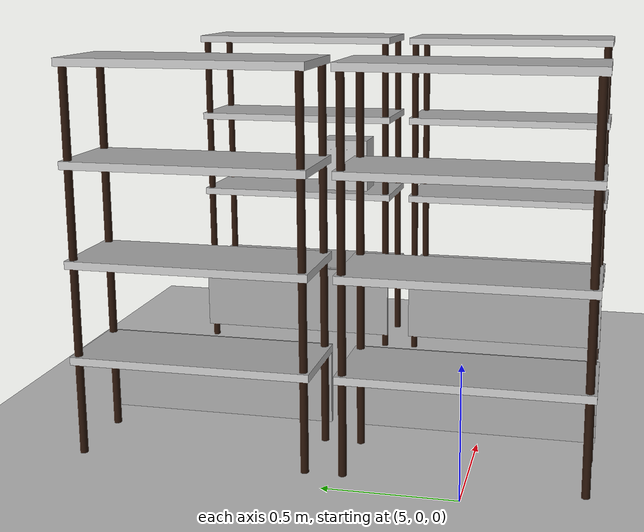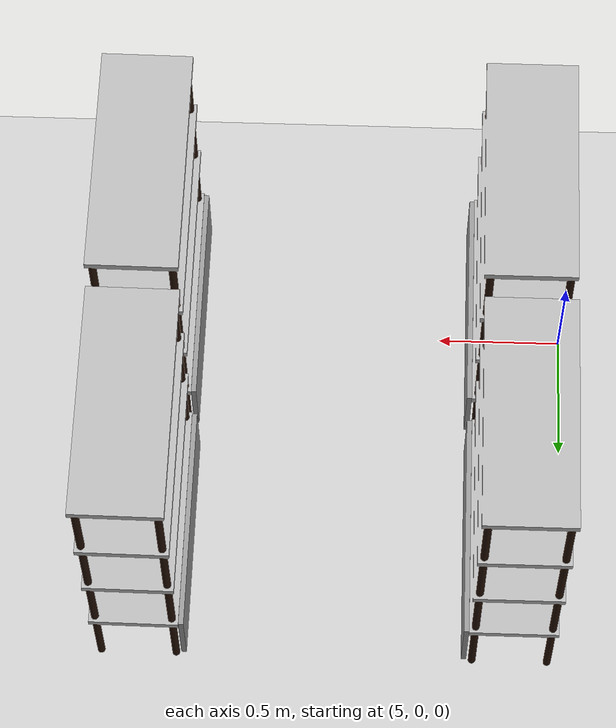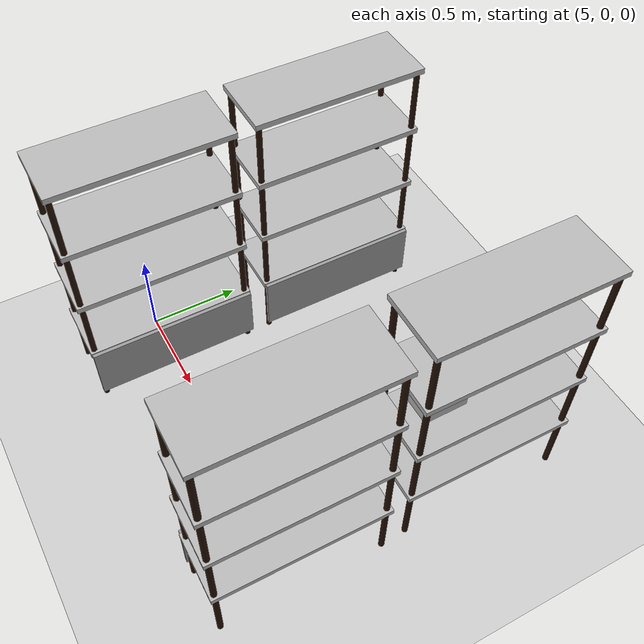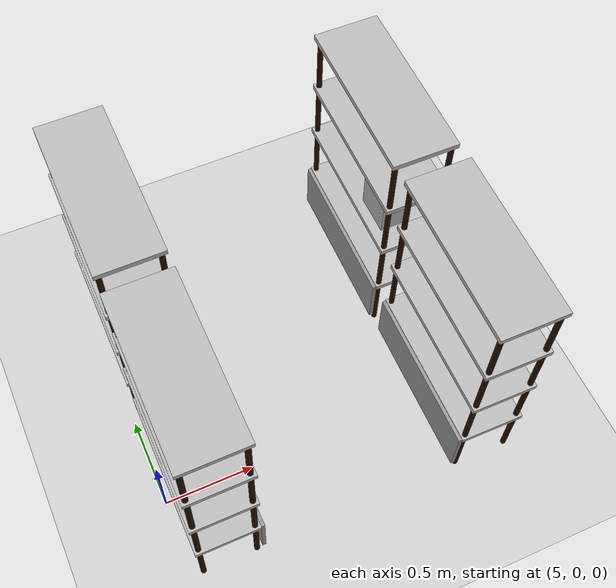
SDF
<sdf version="1.7">
 <world name="default">
  <model name="ground_plane">
   <static>1</static>
   <link name="link">
    <collision name="collision">
     <geometry><plane><normal>0 0 1</normal><size>100 100</size></plane></geometry>
     <surface><friction><ode><mu>100</mu><mu2>50</mu2></ode></friction></surface>
    </collision>
    <visual name="visual">
     <cast_shadows>0</cast_shadows>
     <geometry><plane><normal>0 0 1</normal><size>100 100</size></plane></geometry>
     <material>
      <script><uri>file://media/materials/scripts/gazebo.material</uri><name>Gazebo/Grey</name></script>
     </material>
    </visual>
   </link>
  </model>
  <model name="rack_1">
   <link name="link">
    <inertial>
     <mass>0.1</mass>
     <inertia><ixx>0.01857</ixx><ixy>0</ixy><ixz>0</ixz><iyy>0.015598</iyy><iyz>0</iyz><izz>0.00305</izz></inertia>
    </inertial>
    <visual name="visual1">
     <cast_shadows>0</cast_shadows>
     <geometry><mesh><uri>model://rack/meshes/rack.dae</uri></mesh></geometry>
     <material>
      <shader type="pixel"><normal_map>__default__</normal_map></shader>
      <emissive>0 0 0 1</emissive>
     </material>
    </visual>
    <visual name="visual_2">
     <cast_shadows>0</cast_shadows>
     <geometry><box><size>0.02 0.9 0.31</size></box></geometry>
     <material>
      <lighting>1</lighting>
      <script><uri>file://media/materials/scripts/gazebo.material</uri><name>Gazebo/Grey</name></script>
      <shader type="pixel"><normal_map>__default__</normal_map></shader>
      <ambient>0.3 0.3 0.3 1</ambient>
      <diffuse>0.7 0.7 0.7 1</diffuse>
      <specular>0.01 0.01 0.01 1</specular>
      <emissive>0 0 0 1</emissive>
     </material>
     <pose>-0.185 0 0.22 0 -0 0</pose>
    </visual>
    <collision name="collision_7">
     <pose>0 0 0.36 0 1.57 1.57</pose>
     <geometry><box><size>0.05 0.35 0.91</size></box></geometry>
     <surface>
      <friction>
       <ode><mu>1</mu><mu2>1</mu2><fdir1>0 0 0</fdir1><slip1>0</slip1><slip2>0</slip2></ode>
       <torsional>
        <coefficient>1</coefficient>
        <patch_radius>0</patch_radius>
        <surface_radius>0</surface_radius>
        <use_patch_radius>1</use_patch_radius>
        <ode><slip>0</slip></ode>
       </torsional>
      </friction>
      <bounce><restitution_coefficient>0</restitution_coefficient><threshold>1e+06</threshold></bounce>
      <contact>
       <collide_without_contact>0</collide_without_contact>
       <collide_without_contact_bitmask>1</collide_without_contact_bitmask>
       <collide_bitmask>1</collide_bitmask>
       <ode>
        <soft_cfm>0</soft_cfm>
        <soft_erp>0.2</soft_erp>
        <kp>1e+15</kp>
        <kd>1e+13</kd>
        <max_vel>0.01</max_vel>
        <min_depth>0</min_depth>
       </ode>
       <bullet>
        <split_impulse>1</split_impulse>
        <split_impulse_penetration_threshold>-0.01</split_impulse_penetration_threshold>
        <soft_cfm>0</soft_cfm>
        <soft_erp>0.2</soft_erp>
        <kp>1e+13</kp>
        <kd>1</kd>
       </bullet>
      </contact>
     </surface>
    </collision>
    <collision name="collision_6">
     <pose>0 0 0.725 0 1.57 1.57</pose>
     <geometry><box><size>0.05 0.35 0.91</size></box></geometry>
     <surface>
      <friction>
       <ode><mu>1</mu><mu2>1</mu2><fdir1>0 0 0</fdir1><slip1>0</slip1><slip2>0</slip2></ode>
       <torsional>
        <coefficient>1</coefficient>
        <patch_radius>0</patch_radius>
        <surface_radius>0</surface_radius>
        <use_patch_radius>1</use_patch_radius>
        <ode><slip>0</slip></ode>
       </torsional>
      </friction>
      <bounce><restitution_coefficient>0</restitution_coefficient><threshold>1e+06</threshold></bounce>
      <contact>
       <collide_without_contact>0</collide_without_contact>
       <collide_without_contact_bitmask>1</collide_without_contact_bitmask>
       <collide_bitmask>1</collide_bitmask>
       <ode>
        <soft_cfm>0</soft_cfm>
        <soft_erp>0.2</soft_erp>
        <kp>1e+15</kp>
        <kd>1e+13</kd>
        <max_vel>0.01</max_vel>
        <min_depth>0</min_depth>
       </ode>
       <bullet>
        <split_impulse>1</split_impulse>
        <split_impulse_penetration_threshold>-0.01</split_impulse_penetration_threshold>
        <soft_cfm>0</soft_cfm>
        <soft_erp>0.2</soft_erp>
        <kp>1e+13</kp>
        <kd>1</kd>
       </bullet>
      </contact>
     </surface>
    </collision>
    <collision name="collision_5">
     <pose>0 0 1.09 0 1.57 1.57</pose>
     <geometry><box><size>0.05 0.35 0.91</size></box></geometry>
     <surface>
      <friction>
       <ode><mu>1</mu><mu2>1</mu2><fdir1>0 0 0</fdir1><slip1>0</slip1><slip2>0</slip2></ode>
       <torsional>
        <coefficient>1</coefficient>
        <patch_radius>0</patch_radius>
        <surface_radius>0</surface_radius>
        <use_patch_radius>1</use_patch_radius>
        <ode><slip>0</slip></ode>
       </torsional>
      </friction>
      <bounce><restitution_coefficient>0</restitution_coefficient><threshold>1e+06</threshold></bounce>
      <contact>
       <collide_without_contact>0</collide_without_contact>
       <collide_without_contact_bitmask>1</collide_without_contact_bitmask>
       <collide_bitmask>1</collide_bitmask>
       <ode>
        <soft_cfm>0</soft_cfm>
        <soft_erp>0.2</soft_erp>
        <kp>1e+15</kp>
        <kd>1e+13</kd>
        <max_vel>0.01</max_vel>
        <min_depth>0</min_depth>
       </ode>
       <bullet>
        <split_impulse>1</split_impulse>
        <split_impulse_penetration_threshold>-0.01</split_impulse_penetration_threshold>
        <soft_cfm>0</soft_cfm>
        <soft_erp>0.2</soft_erp>
        <kp>1e+13</kp>
        <kd>1</kd>
       </bullet>
      </contact>
     </surface>
    </collision>
    <collision name="collision_3">
     <pose>0 0 1.455 0 1.57 1.57</pose>
     <geometry><box><size>0.05 0.35 0.91</size></box></geometry>
     <surface>
      <friction>
       <ode><mu>1</mu><mu2>1</mu2><fdir1>0 0 0</fdir1><slip1>0</slip1><slip2>0</slip2></ode>
       <torsional>
        <coefficient>1</coefficient>
        <patch_radius>0</patch_radius>
        <surface_radius>0</surface_radius>
        <use_patch_radius>1</use_patch_radius>
        <ode><slip>0</slip></ode>
       </torsional>
      </friction>
      <bounce><restitution_coefficient>0</restitution_coefficient><threshold>1e+06</threshold></bounce>
      <contact>
       <collide_without_contact>0</collide_without_contact>
       <collide_without_contact_bitmask>1</collide_without_contact_bitmask>
       <collide_bitmask>1</collide_bitmask>
       <ode>
        <soft_cfm>0</soft_cfm>
        <soft_erp>0.2</soft_erp>
        <kp>1e+15</kp>
        <kd>1e+13</kd>
        <max_vel>0.01</max_vel>
        <min_depth>0</min_depth>
       </ode>
       <bullet>
        <split_impulse>1</split_impulse>
        <split_impulse_penetration_threshold>-0.01</split_impulse_penetration_threshold>
        <soft_cfm>0</soft_cfm>
        <soft_erp>0.2</soft_erp>
        <kp>1e+13</kp>
        <kd>1</kd>
       </bullet>
      </contact>
     </surface>
    </collision>
    <collision name="collision_1">
     <pose>0 0.43 0.73 0 -0 1.57</pose>
     <geometry><box><size>0.05 0.36 1.46</size></box></geometry>
     <surface>
      <friction>
       <ode><mu>1</mu><mu2>1</mu2><fdir1>0 0 0</fdir1><slip1>0</slip1><slip2>0</slip2></ode>
       <torsional>
        <coefficient>1</coefficient>
        <patch_radius>0</patch_radius>
        <surface_radius>0</surface_radius>
        <use_patch_radius>1</use_patch_radius>
        <ode><slip>0</slip></ode>
       </torsional>
      </friction>
      <bounce><restitution_coefficient>0</restitution_coefficient><threshold>1e+06</threshold></bounce>
      <contact>
       <collide_without_contact>0</collide_without_contact>
       <collide_without_contact_bitmask>1</collide_without_contact_bitmask>
       <collide_bitmask>1</collide_bitmask>
       <ode>
        <soft_cfm>0</soft_cfm>
        <soft_erp>0.2</soft_erp>
        <kp>1e+15</kp>
        <kd>1e+13</kd>
        <max_vel>0.01</max_vel>
        <min_depth>0</min_depth>
       </ode>
       <bullet>
        <split_impulse>1</split_impulse>
        <split_impulse_penetration_threshold>-0.01</split_impulse_penetration_threshold>
        <soft_cfm>0</soft_cfm>
        <soft_erp>0.2</soft_erp>
        <kp>1e+13</kp>
        <kd>1</kd>
       </bullet>
      </contact>
     </surface>
    </collision>
    <collision name="collision_2">
     <pose>0 -0.43 0.73 0 -0 1.57</pose>
     <geometry><box><size>0.05 0.36 1.46</size></box></geometry>
     <surface>
      <friction>
       <ode><mu>1</mu><mu2>1</mu2><fdir1>0 0 0</fdir1><slip1>0</slip1><slip2>0</slip2></ode>
       <torsional>
        <coefficient>1</coefficient>
        <patch_radius>0</patch_radius>
        <surface_radius>0</surface_radius>
        <use_patch_radius>1</use_patch_radius>
        <ode><slip>0</slip></ode>
       </torsional>
      </friction>
      <bounce><restitution_coefficient>0</restitution_coefficient><threshold>1e+06</threshold></bounce>
      <contact>
       <collide_without_contact>0</collide_without_contact>
       <collide_without_contact_bitmask>1</collide_without_contact_bitmask>
       <collide_bitmask>1</collide_bitmask>
       <ode>
        <soft_cfm>0</soft_cfm>
        <soft_erp>0.2</soft_erp>
        <kp>1e+15</kp>
        <kd>1e+13</kd>
        <max_vel>0.01</max_vel>
        <min_depth>0</min_depth>
       </ode>
       <bullet>
        <split_impulse>1</split_impulse>
        <split_impulse_penetration_threshold>-0.01</split_impulse_penetration_threshold>
        <soft_cfm>0</soft_cfm>
        <soft_erp>0.2</soft_erp>
        <kp>1e+13</kp>
        <kd>1</kd>
       </bullet>
      </contact>
     </surface>
    </collision>
    <collision name="collision">
     <pose>-0.185 0 0.22 0 -0 0</pose>
     <geometry><box><size>0.02 0.9 0.31</size></box></geometry>
     <surface>
      <friction>
       <ode><mu>1</mu><mu2>1</mu2><fdir1>0 0 0</fdir1><slip1>0</slip1><slip2>0</slip2></ode>
       <torsional>
        <coefficient>1</coefficient>
        <patch_radius>0</patch_radius>
        <surface_radius>0</surface_radius>
        <use_patch_radius>1</use_patch_radius>
        <ode><slip>0</slip></ode>
       </torsional>
      </friction>
      <bounce><restitution_coefficient>0</restitution_coefficient><threshold>1e+06</threshold></bounce>
      <contact>
       <collide_without_contact>0</collide_without_contact>
       <collide_without_contact_bitmask>1</collide_without_contact_bitmask>
       <collide_bitmask>1</collide_bitmask>
       <ode>
        <soft_cfm>0</soft_cfm>
        <soft_erp>0.2</soft_erp>
        <kp>1e+15</kp>
        <kd>1e+13</kd>
        <max_vel>0.01</max_vel>
        <min_depth>0</min_depth>
       </ode>
       <bullet>
        <split_impulse>1</split_impulse>
        <split_impulse_penetration_threshold>-0.01</split_impulse_penetration_threshold>
        <soft_cfm>0</soft_cfm>
        <soft_erp>0.2</soft_erp>
        <kp>1e+13</kp>
        <kd>1</kd>
       </bullet>
      </contact>
     </surface>
    </collision>
   </link>
   <static>0</static>
   <pose>6.67854 0.000375 0.033152 -0.001732 0.000288 -0.010437</pose>
  </model>
  <model name="rack_2">
   <link name="link">
    <inertial>
     <mass>0.1</mass>
     <inertia><ixx>0.01857</ixx><ixy>0</ixy><ixz>0</ixz><iyy>0.015598</iyy><iyz>0</iyz><izz>0.00305</izz></inertia>
    </inertial>
    <visual name="visual1">
     <cast_shadows>0</cast_shadows>
     <geometry><mesh><uri>model://rack/meshes/rack.dae</uri></mesh></geometry>
     <material>
      <shader type="pixel"><normal_map>__default__</normal_map></shader>
      <emissive>0 0 0 1</emissive>
     </material>
    </visual>
    <visual name="visual_2">
     <cast_shadows>0</cast_shadows>
     <geometry><box><size>0.02 0.9 0.31</size></box></geometry>
     <material>
      <lighting>1</lighting>
      <script><uri>file://media/materials/scripts/gazebo.material</uri><name>Gazebo/Grey</name></script>
      <shader type="pixel"><normal_map>__default__</normal_map></shader>
      <ambient>0.3 0.3 0.3 1</ambient>
      <diffuse>0.7 0.7 0.7 1</diffuse>
      <specular>0.01 0.01 0.01 1</specular>
      <emissive>0 0 0 1</emissive>
     </material>
     <pose>-0.185 0 0.22 0 -0 0</pose>
    </visual>
    <collision name="collision_7">
     <pose>0 0 0.36 0 1.57 1.57</pose>
     <geometry><box><size>0.05 0.35 0.91</size></box></geometry>
     <surface>
      <friction>
       <ode><mu>1</mu><mu2>1</mu2><fdir1>0 0 0</fdir1><slip1>0</slip1><slip2>0</slip2></ode>
       <torsional>
        <coefficient>1</coefficient>
        <patch_radius>0</patch_radius>
        <surface_radius>0</surface_radius>
        <use_patch_radius>1</use_patch_radius>
        <ode><slip>0</slip></ode>
       </torsional>
      </friction>
      <bounce><restitution_coefficient>0</restitution_coefficient><threshold>1e+06</threshold></bounce>
      <contact>
       <collide_without_contact>0</collide_without_contact>
       <collide_without_contact_bitmask>1</collide_without_contact_bitmask>
       <collide_bitmask>1</collide_bitmask>
       <ode>
        <soft_cfm>0</soft_cfm>
        <soft_erp>0.2</soft_erp>
        <kp>1e+15</kp>
        <kd>1e+13</kd>
        <max_vel>0.01</max_vel>
        <min_depth>0</min_depth>
       </ode>
       <bullet>
        <split_impulse>1</split_impulse>
        <split_impulse_penetration_threshold>-0.01</split_impulse_penetration_threshold>
        <soft_cfm>0</soft_cfm>
        <soft_erp>0.2</soft_erp>
        <kp>1e+13</kp>
        <kd>1</kd>
       </bullet>
      </contact>
     </surface>
    </collision>
    <collision name="collision_6">
     <pose>0 0 0.725 0 1.57 1.57</pose>
     <geometry><box><size>0.05 0.35 0.91</size></box></geometry>
     <surface>
      <friction>
       <ode><mu>1</mu><mu2>1</mu2><fdir1>0 0 0</fdir1><slip1>0</slip1><slip2>0</slip2></ode>
       <torsional>
        <coefficient>1</coefficient>
        <patch_radius>0</patch_radius>
        <surface_radius>0</surface_radius>
        <use_patch_radius>1</use_patch_radius>
        <ode><slip>0</slip></ode>
       </torsional>
      </friction>
      <bounce><restitution_coefficient>0</restitution_coefficient><threshold>1e+06</threshold></bounce>
      <contact>
       <collide_without_contact>0</collide_without_contact>
       <collide_without_contact_bitmask>1</collide_without_contact_bitmask>
       <collide_bitmask>1</collide_bitmask>
       <ode>
        <soft_cfm>0</soft_cfm>
        <soft_erp>0.2</soft_erp>
        <kp>1e+15</kp>
        <kd>1e+13</kd>
        <max_vel>0.01</max_vel>
        <min_depth>0</min_depth>
       </ode>
       <bullet>
        <split_impulse>1</split_impulse>
        <split_impulse_penetration_threshold>-0.01</split_impulse_penetration_threshold>
        <soft_cfm>0</soft_cfm>
        <soft_erp>0.2</soft_erp>
        <kp>1e+13</kp>
        <kd>1</kd>
       </bullet>
      </contact>
     </surface>
    </collision>
    <collision name="collision_5">
     <pose>0 0 1.09 0 1.57 1.57</pose>
     <geometry><box><size>0.05 0.35 0.91</size></box></geometry>
     <surface>
      <friction>
       <ode><mu>1</mu><mu2>1</mu2><fdir1>0 0 0</fdir1><slip1>0</slip1><slip2>0</slip2></ode>
       <torsional>
        <coefficient>1</coefficient>
        <patch_radius>0</patch_radius>
        <surface_radius>0</surface_radius>
        <use_patch_radius>1</use_patch_radius>
        <ode><slip>0</slip></ode>
       </torsional>
      </friction>
      <bounce><restitution_coefficient>0</restitution_coefficient><threshold>1e+06</threshold></bounce>
      <contact>
       <collide_without_contact>0</collide_without_contact>
       <collide_without_contact_bitmask>1</collide_without_contact_bitmask>
       <collide_bitmask>1</collide_bitmask>
       <ode>
        <soft_cfm>0</soft_cfm>
        <soft_erp>0.2</soft_erp>
        <kp>1e+15</kp>
        <kd>1e+13</kd>
        <max_vel>0.01</max_vel>
        <min_depth>0</min_depth>
       </ode>
       <bullet>
        <split_impulse>1</split_impulse>
        <split_impulse_penetration_threshold>-0.01</split_impulse_penetration_threshold>
        <soft_cfm>0</soft_cfm>
        <soft_erp>0.2</soft_erp>
        <kp>1e+13</kp>
        <kd>1</kd>
       </bullet>
      </contact>
     </surface>
    </collision>
    <collision name="collision_3">
     <pose>0 0 1.455 0 1.57 1.57</pose>
     <geometry><box><size>0.05 0.35 0.91</size></box></geometry>
     <surface>
      <friction>
       <ode><mu>1</mu><mu2>1</mu2><fdir1>0 0 0</fdir1><slip1>0</slip1><slip2>0</slip2></ode>
       <torsional>
        <coefficient>1</coefficient>
        <patch_radius>0</patch_radius>
        <surface_radius>0</surface_radius>
        <use_patch_radius>1</use_patch_radius>
        <ode><slip>0</slip></ode>
       </torsional>
      </friction>
      <bounce><restitution_coefficient>0</restitution_coefficient><threshold>1e+06</threshold></bounce>
      <contact>
       <collide_without_contact>0</collide_without_contact>
       <collide_without_contact_bitmask>1</collide_without_contact_bitmask>
       <collide_bitmask>1</collide_bitmask>
       <ode>
        <soft_cfm>0</soft_cfm>
        <soft_erp>0.2</soft_erp>
        <kp>1e+15</kp>
        <kd>1e+13</kd>
        <max_vel>0.01</max_vel>
        <min_depth>0</min_depth>
       </ode>
       <bullet>
        <split_impulse>1</split_impulse>
        <split_impulse_penetration_threshold>-0.01</split_impulse_penetration_threshold>
        <soft_cfm>0</soft_cfm>
        <soft_erp>0.2</soft_erp>
        <kp>1e+13</kp>
        <kd>1</kd>
       </bullet>
      </contact>
     </surface>
    </collision>
    <collision name="collision_1">
     <pose>0 0.43 0.73 0 -0 1.57</pose>
     <geometry><box><size>0.05 0.36 1.46</size></box></geometry>
     <surface>
      <friction>
       <ode><mu>1</mu><mu2>1</mu2><fdir1>0 0 0</fdir1><slip1>0</slip1><slip2>0</slip2></ode>
       <torsional>
        <coefficient>1</coefficient>
        <patch_radius>0</patch_radius>
        <surface_radius>0</surface_radius>
        <use_patch_radius>1</use_patch_radius>
        <ode><slip>0</slip></ode>
       </torsional>
      </friction>
      <bounce><restitution_coefficient>0</restitution_coefficient><threshold>1e+06</threshold></bounce>
      <contact>
       <collide_without_contact>0</collide_without_contact>
       <collide_without_contact_bitmask>1</collide_without_contact_bitmask>
       <collide_bitmask>1</collide_bitmask>
       <ode>
        <soft_cfm>0</soft_cfm>
        <soft_erp>0.2</soft_erp>
        <kp>1e+15</kp>
        <kd>1e+13</kd>
        <max_vel>0.01</max_vel>
        <min_depth>0</min_depth>
       </ode>
       <bullet>
        <split_impulse>1</split_impulse>
        <split_impulse_penetration_threshold>-0.01</split_impulse_penetration_threshold>
        <soft_cfm>0</soft_cfm>
        <soft_erp>0.2</soft_erp>
        <kp>1e+13</kp>
        <kd>1</kd>
       </bullet>
      </contact>
     </surface>
    </collision>
    <collision name="collision_2">
     <pose>0 -0.43 0.73 0 -0 1.57</pose>
     <geometry><box><size>0.05 0.36 1.46</size></box></geometry>
     <surface>
      <friction>
       <ode><mu>1</mu><mu2>1</mu2><fdir1>0 0 0</fdir1><slip1>0</slip1><slip2>0</slip2></ode>
       <torsional>
        <coefficient>1</coefficient>
        <patch_radius>0</patch_radius>
        <surface_radius>0</surface_radius>
        <use_patch_radius>1</use_patch_radius>
        <ode><slip>0</slip></ode>
       </torsional>
      </friction>
      <bounce><restitution_coefficient>0</restitution_coefficient><threshold>1e+06</threshold></bounce>
      <contact>
       <collide_without_contact>0</collide_without_contact>
       <collide_without_contact_bitmask>1</collide_without_contact_bitmask>
       <collide_bitmask>1</collide_bitmask>
       <ode>
        <soft_cfm>0</soft_cfm>
        <soft_erp>0.2</soft_erp>
        <kp>1e+15</kp>
        <kd>1e+13</kd>
        <max_vel>0.01</max_vel>
        <min_depth>0</min_depth>
       </ode>
       <bullet>
        <split_impulse>1</split_impulse>
        <split_impulse_penetration_threshold>-0.01</split_impulse_penetration_threshold>
        <soft_cfm>0</soft_cfm>
        <soft_erp>0.2</soft_erp>
        <kp>1e+13</kp>
        <kd>1</kd>
       </bullet>
      </contact>
     </surface>
    </collision>
    <collision name="collision">
     <pose>-0.185 0 0.22 0 -0 0</pose>
     <geometry><box><size>0.02 0.9 0.31</size></box></geometry>
     <surface>
      <friction>
       <ode><mu>1</mu><mu2>1</mu2><fdir1>0 0 0</fdir1><slip1>0</slip1><slip2>0</slip2></ode>
       <torsional>
        <coefficient>1</coefficient>
        <patch_radius>0</patch_radius>
        <surface_radius>0</surface_radius>
        <use_patch_radius>1</use_patch_radius>
        <ode><slip>0</slip></ode>
       </torsional>
      </friction>
      <bounce><restitution_coefficient>0</restitution_coefficient><threshold>1e+06</threshold></bounce>
      <contact>
       <collide_without_contact>0</collide_without_contact>
       <collide_without_contact_bitmask>1</collide_without_contact_bitmask>
       <collide_bitmask>1</collide_bitmask>
       <ode>
        <soft_cfm>0</soft_cfm>
        <soft_erp>0.2</soft_erp>
        <kp>1e+15</kp>
        <kd>1e+13</kd>
        <max_vel>0.01</max_vel>
        <min_depth>0</min_depth>
       </ode>
       <bullet>
        <split_impulse>1</split_impulse>
        <split_impulse_penetration_threshold>-0.01</split_impulse_penetration_threshold>
        <soft_cfm>0</soft_cfm>
        <soft_erp>0.2</soft_erp>
        <kp>1e+13</kp>
        <kd>1</kd>
       </bullet>
      </contact>
     </surface>
    </collision>
   </link>
   <static>0</static>
   <pose>6.67853 1.00037 0.032986 -0.001626 -0.000937 -0.010437</pose>
  </model>
  <model name="rack_3">
   <link name="link">
    <inertial>
     <mass>0.1</mass>
     <inertia><ixx>0.01857</ixx><ixy>0</ixy><ixz>0</ixz><iyy>0.015598</iyy><iyz>0</iyz><izz>0.00305</izz></inertia>
    </inertial>
    <visual name="visual1">
     <cast_shadows>0</cast_shadows>
     <geometry><mesh><uri>model://rack/meshes/rack.dae</uri></mesh></geometry>
     <material>
      <shader type="pixel"><normal_map>__default__</normal_map></shader>
      <emissive>0 0 0 1</emissive>
     </material>
    </visual>
    <visual name="visual_2">
     <cast_shadows>0</cast_shadows>
     <geometry><box><size>0.02 0.9 0.31</size></box></geometry>
     <material>
      <lighting>1</lighting>
      <script><uri>file://media/materials/scripts/gazebo.material</uri><name>Gazebo/Grey</name></script>
      <shader type="pixel"><normal_map>__default__</normal_map></shader>
      <ambient>0.3 0.3 0.3 1</ambient>
      <diffuse>0.7 0.7 0.7 1</diffuse>
      <specular>0.01 0.01 0.01 1</specular>
      <emissive>0 0 0 1</emissive>
     </material>
     <pose>-0.185 0 0.22 0 -0 0</pose>
    </visual>
    <collision name="collision_7">
     <pose>0 0 0.36 0 1.57 1.57</pose>
     <geometry><box><size>0.05 0.35 0.91</size></box></geometry>
     <surface>
      <friction>
       <ode><mu>1</mu><mu2>1</mu2><fdir1>0 0 0</fdir1><slip1>0</slip1><slip2>0</slip2></ode>
       <torsional>
        <coefficient>1</coefficient>
        <patch_radius>0</patch_radius>
        <surface_radius>0</surface_radius>
        <use_patch_radius>1</use_patch_radius>
        <ode><slip>0</slip></ode>
       </torsional>
      </friction>
      <bounce><restitution_coefficient>0</restitution_coefficient><threshold>1e+06</threshold></bounce>
      <contact>
       <collide_without_contact>0</collide_without_contact>
       <collide_without_contact_bitmask>1</collide_without_contact_bitmask>
       <collide_bitmask>1</collide_bitmask>
       <ode>
        <soft_cfm>0</soft_cfm>
        <soft_erp>0.2</soft_erp>
        <kp>1e+15</kp>
        <kd>1e+13</kd>
        <max_vel>0.01</max_vel>
        <min_depth>0</min_depth>
       </ode>
       <bullet>
        <split_impulse>1</split_impulse>
        <split_impulse_penetration_threshold>-0.01</split_impulse_penetration_threshold>
        <soft_cfm>0</soft_cfm>
        <soft_erp>0.2</soft_erp>
        <kp>1e+13</kp>
        <kd>1</kd>
       </bullet>
      </contact>
     </surface>
    </collision>
    <collision name="collision_6">
     <pose>0 0 0.725 0 1.57 1.57</pose>
     <geometry><box><size>0.05 0.35 0.91</size></box></geometry>
     <surface>
      <friction>
       <ode><mu>1</mu><mu2>1</mu2><fdir1>0 0 0</fdir1><slip1>0</slip1><slip2>0</slip2></ode>
       <torsional>
        <coefficient>1</coefficient>
        <patch_radius>0</patch_radius>
        <surface_radius>0</surface_radius>
        <use_patch_radius>1</use_patch_radius>
        <ode><slip>0</slip></ode>
       </torsional>
      </friction>
      <bounce><restitution_coefficient>0</restitution_coefficient><threshold>1e+06</threshold></bounce>
      <contact>
       <collide_without_contact>0</collide_without_contact>
       <collide_without_contact_bitmask>1</collide_without_contact_bitmask>
       <collide_bitmask>1</collide_bitmask>
       <ode>
        <soft_cfm>0</soft_cfm>
        <soft_erp>0.2</soft_erp>
        <kp>1e+15</kp>
        <kd>1e+13</kd>
        <max_vel>0.01</max_vel>
        <min_depth>0</min_depth>
       </ode>
       <bullet>
        <split_impulse>1</split_impulse>
        <split_impulse_penetration_threshold>-0.01</split_impulse_penetration_threshold>
        <soft_cfm>0</soft_cfm>
        <soft_erp>0.2</soft_erp>
        <kp>1e+13</kp>
        <kd>1</kd>
       </bullet>
      </contact>
     </surface>
    </collision>
    <collision name="collision_5">
     <pose>0 0 1.09 0 1.57 1.57</pose>
     <geometry><box><size>0.05 0.35 0.91</size></box></geometry>
     <surface>
      <friction>
       <ode><mu>1</mu><mu2>1</mu2><fdir1>0 0 0</fdir1><slip1>0</slip1><slip2>0</slip2></ode>
       <torsional>
        <coefficient>1</coefficient>
        <patch_radius>0</patch_radius>
        <surface_radius>0</surface_radius>
        <use_patch_radius>1</use_patch_radius>
        <ode><slip>0</slip></ode>
       </torsional>
      </friction>
      <bounce><restitution_coefficient>0</restitution_coefficient><threshold>1e+06</threshold></bounce>
      <contact>
       <collide_without_contact>0</collide_without_contact>
       <collide_without_contact_bitmask>1</collide_without_contact_bitmask>
       <collide_bitmask>1</collide_bitmask>
       <ode>
        <soft_cfm>0</soft_cfm>
        <soft_erp>0.2</soft_erp>
        <kp>1e+15</kp>
        <kd>1e+13</kd>
        <max_vel>0.01</max_vel>
        <min_depth>0</min_depth>
       </ode>
       <bullet>
        <split_impulse>1</split_impulse>
        <split_impulse_penetration_threshold>-0.01</split_impulse_penetration_threshold>
        <soft_cfm>0</soft_cfm>
        <soft_erp>0.2</soft_erp>
        <kp>1e+13</kp>
        <kd>1</kd>
       </bullet>
      </contact>
     </surface>
    </collision>
    <collision name="collision_3">
     <pose>0 0 1.455 0 1.57 1.57</pose>
     <geometry><box><size>0.05 0.35 0.91</size></box></geometry>
     <surface>
      <friction>
       <ode><mu>1</mu><mu2>1</mu2><fdir1>0 0 0</fdir1><slip1>0</slip1><slip2>0</slip2></ode>
       <torsional>
        <coefficient>1</coefficient>
        <patch_radius>0</patch_radius>
        <surface_radius>0</surface_radius>
        <use_patch_radius>1</use_patch_radius>
        <ode><slip>0</slip></ode>
       </torsional>
      </friction>
      <bounce><restitution_coefficient>0</restitution_coefficient><threshold>1e+06</threshold></bounce>
      <contact>
       <collide_without_contact>0</collide_without_contact>
       <collide_without_contact_bitmask>1</collide_without_contact_bitmask>
       <collide_bitmask>1</collide_bitmask>
       <ode>
        <soft_cfm>0</soft_cfm>
        <soft_erp>0.2</soft_erp>
        <kp>1e+15</kp>
        <kd>1e+13</kd>
        <max_vel>0.01</max_vel>
        <min_depth>0</min_depth>
       </ode>
       <bullet>
        <split_impulse>1</split_impulse>
        <split_impulse_penetration_threshold>-0.01</split_impulse_penetration_threshold>
        <soft_cfm>0</soft_cfm>
        <soft_erp>0.2</soft_erp>
        <kp>1e+13</kp>
        <kd>1</kd>
       </bullet>
      </contact>
     </surface>
    </collision>
    <collision name="collision_1">
     <pose>0 0.43 0.73 0 -0 1.57</pose>
     <geometry><box><size>0.05 0.36 1.46</size></box></geometry>
     <surface>
      <friction>
       <ode><mu>1</mu><mu2>1</mu2><fdir1>0 0 0</fdir1><slip1>0</slip1><slip2>0</slip2></ode>
       <torsional>
        <coefficient>1</coefficient>
        <patch_radius>0</patch_radius>
        <surface_radius>0</surface_radius>
        <use_patch_radius>1</use_patch_radius>
        <ode><slip>0</slip></ode>
       </torsional>
      </friction>
      <bounce><restitution_coefficient>0</restitution_coefficient><threshold>1e+06</threshold></bounce>
      <contact>
       <collide_without_contact>0</collide_without_contact>
       <collide_without_contact_bitmask>1</collide_without_contact_bitmask>
       <collide_bitmask>1</collide_bitmask>
       <ode>
        <soft_cfm>0</soft_cfm>
        <soft_erp>0.2</soft_erp>
        <kp>1e+15</kp>
        <kd>1e+13</kd>
        <max_vel>0.01</max_vel>
        <min_depth>0</min_depth>
       </ode>
       <bullet>
        <split_impulse>1</split_impulse>
        <split_impulse_penetration_threshold>-0.01</split_impulse_penetration_threshold>
        <soft_cfm>0</soft_cfm>
        <soft_erp>0.2</soft_erp>
        <kp>1e+13</kp>
        <kd>1</kd>
       </bullet>
      </contact>
     </surface>
    </collision>
    <collision name="collision_2">
     <pose>0 -0.43 0.73 0 -0 1.57</pose>
     <geometry><box><size>0.05 0.36 1.46</size></box></geometry>
     <surface>
      <friction>
       <ode><mu>1</mu><mu2>1</mu2><fdir1>0 0 0</fdir1><slip1>0</slip1><slip2>0</slip2></ode>
       <torsional>
        <coefficient>1</coefficient>
        <patch_radius>0</patch_radius>
        <surface_radius>0</surface_radius>
        <use_patch_radius>1</use_patch_radius>
        <ode><slip>0</slip></ode>
       </torsional>
      </friction>
      <bounce><restitution_coefficient>0</restitution_coefficient><threshold>1e+06</threshold></bounce>
      <contact>
       <collide_without_contact>0</collide_without_contact>
       <collide_without_contact_bitmask>1</collide_without_contact_bitmask>
       <collide_bitmask>1</collide_bitmask>
       <ode>
        <soft_cfm>0</soft_cfm>
        <soft_erp>0.2</soft_erp>
        <kp>1e+15</kp>
        <kd>1e+13</kd>
        <max_vel>0.01</max_vel>
        <min_depth>0</min_depth>
       </ode>
       <bullet>
        <split_impulse>1</split_impulse>
        <split_impulse_penetration_threshold>-0.01</split_impulse_penetration_threshold>
        <soft_cfm>0</soft_cfm>
        <soft_erp>0.2</soft_erp>
        <kp>1e+13</kp>
        <kd>1</kd>
       </bullet>
      </contact>
     </surface>
    </collision>
    <collision name="collision">
     <pose>-0.185 0 0.22 0 -0 0</pose>
     <geometry><box><size>0.02 0.9 0.31</size></box></geometry>
     <surface>
      <friction>
       <ode><mu>1</mu><mu2>1</mu2><fdir1>0 0 0</fdir1><slip1>0</slip1><slip2>0</slip2></ode>
       <torsional>
        <coefficient>1</coefficient>
        <patch_radius>0</patch_radius>
        <surface_radius>0</surface_radius>
        <use_patch_radius>1</use_patch_radius>
        <ode><slip>0</slip></ode>
       </torsional>
      </friction>
      <bounce><restitution_coefficient>0</restitution_coefficient><threshold>1e+06</threshold></bounce>
      <contact>
       <collide_without_contact>0</collide_without_contact>
       <collide_without_contact_bitmask>1</collide_without_contact_bitmask>
       <collide_bitmask>1</collide_bitmask>
       <ode>
        <soft_cfm>0</soft_cfm>
        <soft_erp>0.2</soft_erp>
        <kp>1e+15</kp>
        <kd>1e+13</kd>
        <max_vel>0.01</max_vel>
        <min_depth>0</min_depth>
       </ode>
       <bullet>
        <split_impulse>1</split_impulse>
        <split_impulse_penetration_threshold>-0.01</split_impulse_penetration_threshold>
        <soft_cfm>0</soft_cfm>
        <soft_erp>0.2</soft_erp>
        <kp>1e+13</kp>
        <kd>1</kd>
       </bullet>
      </contact>
     </surface>
    </collision>
   </link>
   <static>0</static>
   <pose>5.2 1 0.034221 0 -0 3.14</pose>
  </model>
  <model name="rack_4">
   <link name="link">
    <inertial>
     <mass>0.1</mass>
     <inertia><ixx>0.01857</ixx><ixy>0</ixy><ixz>0</ixz><iyy>0.015598</iyy><iyz>0</iyz><izz>0.00305</izz></inertia>
    </inertial>
    <visual name="visual1">
     <cast_shadows>0</cast_shadows>
     <geometry><mesh><uri>model://rack/meshes/rack.dae</uri></mesh></geometry>
     <material>
      <shader type="pixel"><normal_map>__default__</normal_map></shader>
      <emissive>0 0 0 1</emissive>
     </material>
    </visual>
    <visual name="visual_2">
     <cast_shadows>0</cast_shadows>
     <geometry><box><size>0.02 0.9 0.31</size></box></geometry>
     <material>
      <lighting>1</lighting>
      <script><uri>file://media/materials/scripts/gazebo.material</uri><name>Gazebo/Grey</name></script>
      <shader type="pixel"><normal_map>__default__</normal_map></shader>
      <ambient>0.3 0.3 0.3 1</ambient>
      <diffuse>0.7 0.7 0.7 1</diffuse>
      <specular>0.01 0.01 0.01 1</specular>
      <emissive>0 0 0 1</emissive>
     </material>
     <pose>-0.185 0 0.22 0 -0 0</pose>
    </visual>
    <collision name="collision_7">
     <pose>0 0 0.36 0 1.57 1.57</pose>
     <geometry><box><size>0.05 0.35 0.91</size></box></geometry>
     <surface>
      <friction>
       <ode><mu>1</mu><mu2>1</mu2><fdir1>0 0 0</fdir1><slip1>0</slip1><slip2>0</slip2></ode>
       <torsional>
        <coefficient>1</coefficient>
        <patch_radius>0</patch_radius>
        <surface_radius>0</surface_radius>
        <use_patch_radius>1</use_patch_radius>
        <ode><slip>0</slip></ode>
       </torsional>
      </friction>
      <bounce><restitution_coefficient>0</restitution_coefficient><threshold>1e+06</threshold></bounce>
      <contact>
       <collide_without_contact>0</collide_without_contact>
       <collide_without_contact_bitmask>1</collide_without_contact_bitmask>
       <collide_bitmask>1</collide_bitmask>
       <ode>
        <soft_cfm>0</soft_cfm>
        <soft_erp>0.2</soft_erp>
        <kp>1e+15</kp>
        <kd>1e+13</kd>
        <max_vel>0.01</max_vel>
        <min_depth>0</min_depth>
       </ode>
       <bullet>
        <split_impulse>1</split_impulse>
        <split_impulse_penetration_threshold>-0.01</split_impulse_penetration_threshold>
        <soft_cfm>0</soft_cfm>
        <soft_erp>0.2</soft_erp>
        <kp>1e+13</kp>
        <kd>1</kd>
       </bullet>
      </contact>
     </surface>
    </collision>
    <collision name="collision_6">
     <pose>0 0 0.725 0 1.57 1.57</pose>
     <geometry><box><size>0.05 0.35 0.91</size></box></geometry>
     <surface>
      <friction>
       <ode><mu>1</mu><mu2>1</mu2><fdir1>0 0 0</fdir1><slip1>0</slip1><slip2>0</slip2></ode>
       <torsional>
        <coefficient>1</coefficient>
        <patch_radius>0</patch_radius>
        <surface_radius>0</surface_radius>
        <use_patch_radius>1</use_patch_radius>
        <ode><slip>0</slip></ode>
       </torsional>
      </friction>
      <bounce><restitution_coefficient>0</restitution_coefficient><threshold>1e+06</threshold></bounce>
      <contact>
       <collide_without_contact>0</collide_without_contact>
       <collide_without_contact_bitmask>1</collide_without_contact_bitmask>
       <collide_bitmask>1</collide_bitmask>
       <ode>
        <soft_cfm>0</soft_cfm>
        <soft_erp>0.2</soft_erp>
        <kp>1e+15</kp>
        <kd>1e+13</kd>
        <max_vel>0.01</max_vel>
        <min_depth>0</min_depth>
       </ode>
       <bullet>
        <split_impulse>1</split_impulse>
        <split_impulse_penetration_threshold>-0.01</split_impulse_penetration_threshold>
        <soft_cfm>0</soft_cfm>
        <soft_erp>0.2</soft_erp>
        <kp>1e+13</kp>
        <kd>1</kd>
       </bullet>
      </contact>
     </surface>
    </collision>
    <collision name="collision_5">
     <pose>0 0 1.09 0 1.57 1.57</pose>
     <geometry><box><size>0.05 0.35 0.91</size></box></geometry>
     <surface>
      <friction>
       <ode><mu>1</mu><mu2>1</mu2><fdir1>0 0 0</fdir1><slip1>0</slip1><slip2>0</slip2></ode>
       <torsional>
        <coefficient>1</coefficient>
        <patch_radius>0</patch_radius>
        <surface_radius>0</surface_radius>
        <use_patch_radius>1</use_patch_radius>
        <ode><slip>0</slip></ode>
       </torsional>
      </friction>
      <bounce><restitution_coefficient>0</restitution_coefficient><threshold>1e+06</threshold></bounce>
      <contact>
       <collide_without_contact>0</collide_without_contact>
       <collide_without_contact_bitmask>1</collide_without_contact_bitmask>
       <collide_bitmask>1</collide_bitmask>
       <ode>
        <soft_cfm>0</soft_cfm>
        <soft_erp>0.2</soft_erp>
        <kp>1e+15</kp>
        <kd>1e+13</kd>
        <max_vel>0.01</max_vel>
        <min_depth>0</min_depth>
       </ode>
       <bullet>
        <split_impulse>1</split_impulse>
        <split_impulse_penetration_threshold>-0.01</split_impulse_penetration_threshold>
        <soft_cfm>0</soft_cfm>
        <soft_erp>0.2</soft_erp>
        <kp>1e+13</kp>
        <kd>1</kd>
       </bullet>
      </contact>
     </surface>
    </collision>
    <collision name="collision_3">
     <pose>0 0 1.455 0 1.57 1.57</pose>
     <geometry><box><size>0.05 0.35 0.91</size></box></geometry>
     <surface>
      <friction>
       <ode><mu>1</mu><mu2>1</mu2><fdir1>0 0 0</fdir1><slip1>0</slip1><slip2>0</slip2></ode>
       <torsional>
        <coefficient>1</coefficient>
        <patch_radius>0</patch_radius>
        <surface_radius>0</surface_radius>
        <use_patch_radius>1</use_patch_radius>
        <ode><slip>0</slip></ode>
       </torsional>
      </friction>
      <bounce><restitution_coefficient>0</restitution_coefficient><threshold>1e+06</threshold></bounce>
      <contact>
       <collide_without_contact>0</collide_without_contact>
       <collide_without_contact_bitmask>1</collide_without_contact_bitmask>
       <collide_bitmask>1</collide_bitmask>
       <ode>
        <soft_cfm>0</soft_cfm>
        <soft_erp>0.2</soft_erp>
        <kp>1e+15</kp>
        <kd>1e+13</kd>
        <max_vel>0.01</max_vel>
        <min_depth>0</min_depth>
       </ode>
       <bullet>
        <split_impulse>1</split_impulse>
        <split_impulse_penetration_threshold>-0.01</split_impulse_penetration_threshold>
        <soft_cfm>0</soft_cfm>
        <soft_erp>0.2</soft_erp>
        <kp>1e+13</kp>
        <kd>1</kd>
       </bullet>
      </contact>
     </surface>
    </collision>
    <collision name="collision_1">
     <pose>0 0.43 0.73 0 -0 1.57</pose>
     <geometry><box><size>0.05 0.36 1.46</size></box></geometry>
     <surface>
      <friction>
       <ode><mu>1</mu><mu2>1</mu2><fdir1>0 0 0</fdir1><slip1>0</slip1><slip2>0</slip2></ode>
       <torsional>
        <coefficient>1</coefficient>
        <patch_radius>0</patch_radius>
        <surface_radius>0</surface_radius>
        <use_patch_radius>1</use_patch_radius>
        <ode><slip>0</slip></ode>
       </torsional>
      </friction>
      <bounce><restitution_coefficient>0</restitution_coefficient><threshold>1e+06</threshold></bounce>
      <contact>
       <collide_without_contact>0</collide_without_contact>
       <collide_without_contact_bitmask>1</collide_without_contact_bitmask>
       <collide_bitmask>1</collide_bitmask>
       <ode>
        <soft_cfm>0</soft_cfm>
        <soft_erp>0.2</soft_erp>
        <kp>1e+15</kp>
        <kd>1e+13</kd>
        <max_vel>0.01</max_vel>
        <min_depth>0</min_depth>
       </ode>
       <bullet>
        <split_impulse>1</split_impulse>
        <split_impulse_penetration_threshold>-0.01</split_impulse_penetration_threshold>
        <soft_cfm>0</soft_cfm>
        <soft_erp>0.2</soft_erp>
        <kp>1e+13</kp>
        <kd>1</kd>
       </bullet>
      </contact>
     </surface>
    </collision>
    <collision name="collision_2">
     <pose>0 -0.43 0.73 0 -0 1.57</pose>
     <geometry><box><size>0.05 0.36 1.46</size></box></geometry>
     <surface>
      <friction>
       <ode><mu>1</mu><mu2>1</mu2><fdir1>0 0 0</fdir1><slip1>0</slip1><slip2>0</slip2></ode>
       <torsional>
        <coefficient>1</coefficient>
        <patch_radius>0</patch_radius>
        <surface_radius>0</surface_radius>
        <use_patch_radius>1</use_patch_radius>
        <ode><slip>0</slip></ode>
       </torsional>
      </friction>
      <bounce><restitution_coefficient>0</restitution_coefficient><threshold>1e+06</threshold></bounce>
      <contact>
       <collide_without_contact>0</collide_without_contact>
       <collide_without_contact_bitmask>1</collide_without_contact_bitmask>
       <collide_bitmask>1</collide_bitmask>
       <ode>
        <soft_cfm>0</soft_cfm>
        <soft_erp>0.2</soft_erp>
        <kp>1e+15</kp>
        <kd>1e+13</kd>
        <max_vel>0.01</max_vel>
        <min_depth>0</min_depth>
       </ode>
       <bullet>
        <split_impulse>1</split_impulse>
        <split_impulse_penetration_threshold>-0.01</split_impulse_penetration_threshold>
        <soft_cfm>0</soft_cfm>
        <soft_erp>0.2</soft_erp>
        <kp>1e+13</kp>
        <kd>1</kd>
       </bullet>
      </contact>
     </surface>
    </collision>
    <collision name="collision">
     <pose>-0.185 0 0.22 0 -0 0</pose>
     <geometry><box><size>0.02 0.9 0.31</size></box></geometry>
     <surface>
      <friction>
       <ode><mu>1</mu><mu2>1</mu2><fdir1>0 0 0</fdir1><slip1>0</slip1><slip2>0</slip2></ode>
       <torsional>
        <coefficient>1</coefficient>
        <patch_radius>0</patch_radius>
        <surface_radius>0</surface_radius>
        <use_patch_radius>1</use_patch_radius>
        <ode><slip>0</slip></ode>
       </torsional>
      </friction>
      <bounce><restitution_coefficient>0</restitution_coefficient><threshold>1e+06</threshold></bounce>
      <contact>
       <collide_without_contact>0</collide_without_contact>
       <collide_without_contact_bitmask>1</collide_without_contact_bitmask>
       <collide_bitmask>1</collide_bitmask>
       <ode>
        <soft_cfm>0</soft_cfm>
        <soft_erp>0.2</soft_erp>
        <kp>1e+15</kp>
        <kd>1e+13</kd>
        <max_vel>0.01</max_vel>
        <min_depth>0</min_depth>
       </ode>
       <bullet>
        <split_impulse>1</split_impulse>
        <split_impulse_penetration_threshold>-0.01</split_impulse_penetration_threshold>
        <soft_cfm>0</soft_cfm>
        <soft_erp>0.2</soft_erp>
        <kp>1e+13</kp>
        <kd>1</kd>
       </bullet>
      </contact>
     </surface>
    </collision>
   </link>
   <static>0</static>
   <pose>5.2 -0 0.034222 0 -0 3.14</pose>
  </model>
  <model name="box_clone">
   <link name="link">
    <inertial>
     <inertia>
      <ixx>0.00220983</ixx>
      <ixy>0</ixy>
      <ixz>0</ixz>
      <iyy>0.00128087</iyy>
      <iyz>0</iyz>
      <izz>0.00244903</izz>
     </inertia>
     <mass>0.01</mass>
    </inertial>
    <visual name="visual1">
     <cast_shadows>0</cast_shadows>
     <geometry><mesh><uri>model://box/meshes/box.dae</uri></mesh></geometry>
     <material>
      <shader type="pixel"><normal_map>__default__</normal_map></shader>
      <emissive>0 0 0 1</emissive>
     </material>
     <pose>0 0 -0.12 0 -0 0</pose>
    </visual>
    <collision name="collision_0">
     <geometry><box><size>0.16 0.22 0.24</size></box></geometry>
     <surface>
      <friction>
       <ode><mu>1</mu><mu2>1</mu2><fdir1>0 0 0</fdir1><slip1>0</slip1><slip2>0</slip2></ode>
       <torsional>
        <coefficient>1</coefficient>
        <patch_radius>0</patch_radius>
        <surface_radius>0</surface_radius>
        <use_patch_radius>1</use_patch_radius>
        <ode><slip>0</slip></ode>
       </torsional>
      </friction>
      <bounce><restitution_coefficient>0</restitution_coefficient><threshold>1e+06</threshold></bounce>
      <contact>
       <collide_without_contact>0</collide_without_contact>
       <collide_without_contact_bitmask>1</collide_without_contact_bitmask>
       <collide_bitmask>1</collide_bitmask>
       <ode>
        <soft_cfm>0</soft_cfm>
        <soft_erp>0.2</soft_erp>
        <kp>1e+13</kp>
        <kd>1</kd>
        <max_vel>0.01</max_vel>
        <min_depth>0</min_depth>
       </ode>
       <bullet>
        <split_impulse>1</split_impulse>
        <split_impulse_penetration_threshold>-0.01</split_impulse_penetration_threshold>
        <soft_cfm>0</soft_cfm>
        <soft_erp>0.2</soft_erp>
        <kp>1e+13</kp>
        <kd>1</kd>
       </bullet>
      </contact>
     </surface>
    </collision>
   </link>
   <static>0</static>
   <pose>6.6328 0.77864 0.90313 0.000842 0.000928 -3.1372</pose>
  </model>
 </world>
</sdf>
